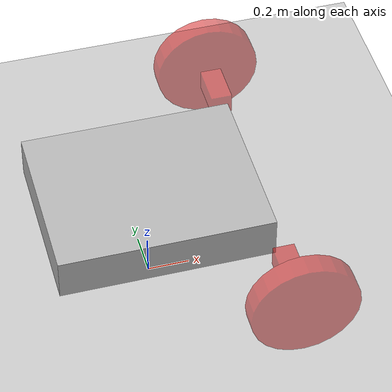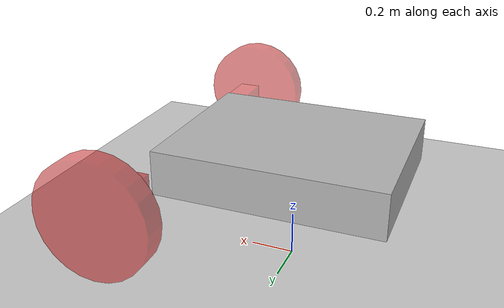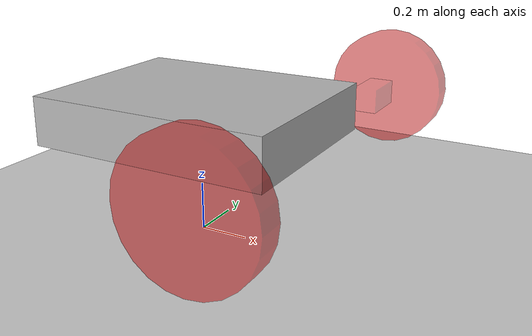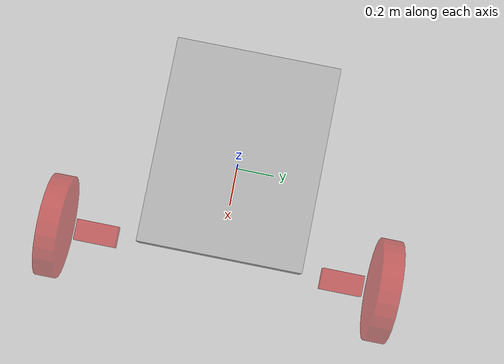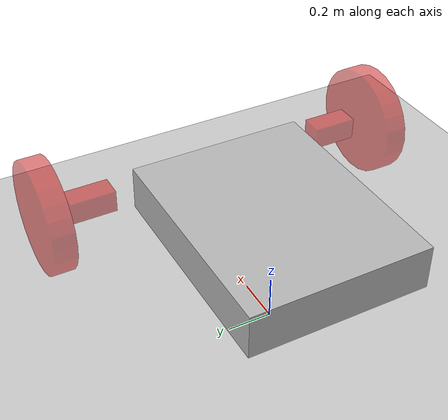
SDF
<?xml version="1.0" ?>
<sdf version="1.6">
  <world name="default">
    <light type="directional" name="sun">
      <cast_shadows>true</cast_shadows>
      <pose>0 0 10 0 0 0</pose>
      <diffuse>1 1 1 1</diffuse>
      <specular>0.5 0.5 0.5 1</specular>
      <attenuation>
        <range>1000</range>
        <constant>0.9</constant>
        <linear>0.01</linear>
        <quadratic>0.001</quadratic>
      </attenuation>
      <direction>-0.5 0.1 -0.9</direction>
    </light>
    <gravity>0 0 -9.8</gravity>

    <model name="ground_plane">
        <static>true</static>
        <link name="link">
            <collision name="collision">
            <geometry>
                <plane>
                <normal>0 0 1</normal>
                </plane>
            </geometry>
            </collision>
            <visual name="visual">
            <geometry>
                <plane>
                <normal>0 0 1</normal>
                <size>100 100</size>
                </plane>
            </geometry>
            <material>
                <ambient>0.8 0.8 0.8 1</ambient>
                <diffuse>0.8 0.8 0.8 1</diffuse>
                <specular>0.8 0.8 0.8 1</specular>
            </material>
            </visual>
        </link>
    </model>

    <model name="joint_controller_demo">
      <static>false</static>
      <pose>0 0 0.5 0 0 0</pose>

      <link name="base_link">
        <pose>0.0 0.0 0.0 0 0 0</pose>
        <inertial>
          <inertia>
            <ixx>2.501</ixx>
            <ixy>0</ixy>
            <ixz>0</ixz>
            <iyy>2.501</iyy>
            <iyz>0</iyz>
            <izz>5</izz>
          </inertia>
          <mass>1.0</mass>
        </inertial>
        <visual name="base_visual">
          <pose>0.0 0.0 0.0 0 0 0</pose>
          <geometry>
            <box>
              <size>1.0 0.8 0.2</size>
            </box>
          </geometry>

        </visual>
        <collision name="base_collision">
          <pose>0.0 0.0 0.0 0 0 0</pose>
          <geometry>
            <box>
              <size>1.0 0.8 0.2</size>
            </box>
          </geometry>
        </collision>
      </link>

      <link name="left_arm">
        <pose>0.5 0.6 0.0 1.5707963 0 0</pose>
        <inertial>
          <inertia>
            <ixx>2.501</ixx>
            <ixy>0</ixy>
            <ixz>0</ixz>
            <iyy>2.501</iyy>
            <iyz>0</iyz>
            <izz>5</izz>
          </inertia>
          <mass>0.5</mass>
        </inertial>
        <visual name="visual">
          <geometry>
            <box>
              <size>0.1 0.1 0.2</size>
            </box>
          </geometry>
          <material>
            <ambient>0.2 0.8 0.2 1</ambient>
            <diffuse>0.8 0 0 1</diffuse>
          </material>
          <transparency>0.5</transparency>
        </visual>
        <collision name="collision">
          <geometry>
            <box>
              <size>0.1 0.1 0.2</size>
            </box>
          </geometry>
        </collision>
      </link>

      <link name="left_wheel">
        <pose>0.5 0.8 0.0 1.5707963 0 0</pose>
        <inertial>
          <inertia>
            <ixx>0.032</ixx>
            <ixy>0</ixy>
            <ixz>0</ixz>
            <iyy>0.032</iyy>
            <iyz>0</iyz>
            <izz>0.00012</izz>
          </inertia>
          <mass>0.5</mass>
        </inertial>
        <visual name="visual">
          <geometry>
            <cylinder>
              <radius>0.25</radius>
              <length>0.1</length>
            </cylinder>
          </geometry>
          <material>
            <ambient>0.2 0.8 0.2 1</ambient>
            <diffuse>0.8 0 0 1</diffuse>
          </material>
          <transparency>0.5</transparency>
        </visual>
        <collision name="collision">
          <geometry>
            <cylinder>
              <radius>0.25</radius>
              <length>0.1</length>
            </cylinder>
          </geometry>
        </collision>
      </link>

      <link name="right_arm">
        <pose>0.5 -0.6 0.0 1.5707963 0 0</pose>
        <inertial>
          <inertia>
            <ixx>2.501</ixx>
            <ixy>0</ixy>
            <ixz>0</ixz>
            <iyy>2.501</iyy>
            <iyz>0</iyz>
            <izz>5</izz>
          </inertia>
          <mass>0.5</mass>
        </inertial>
        <visual name="visual">
          <geometry>
            <box>
              <size>0.1 0.1 0.2</size>
            </box>
          </geometry>
          <material>
            <ambient>0.2 0.8 0.2 1</ambient>
            <diffuse>0.8 0 0 1</diffuse>
          </material>
          <transparency>0.5</transparency>
        </visual>
        <collision name="collision">
          <geometry>
            <box>
              <size>0.1 0.1 0.2</size>
            </box>
          </geometry>
        </collision>
      </link>

      <link name="right_wheel">
        <pose>0.5 -0.8 0.0 1.5707963 0 0</pose>
        <inertial>
          <inertia>
            <ixx>0.032</ixx>
            <ixy>0</ixy>
            <ixz>0</ixz>
            <iyy>0.032</iyy>
            <iyz>0</iyz>
            <izz>0.00012</izz>
          </inertia>
          <mass>0.5</mass>
        </inertial>
        <visual name="visual">
          <geometry>
            <cylinder>
              <radius>0.25</radius>
              <length>0.1</length>
            </cylinder>
          </geometry>
          <material>
            <ambient>0.2 0.8 0.2 1</ambient>
            <diffuse>0.8 0 0 1</diffuse>
          </material>
          <transparency>0.5</transparency>
        </visual>
        <collision name="collision">
          <geometry>
            <cylinder>
              <radius>0.25</radius>
              <length>0.1</length>
            </cylinder>
          </geometry>
        </collision>
      </link>

      <joint name="left_arm_joint" type="revolute">
        <pose>0 0 0.1 0 0 0</pose>
        <parent>base_link</parent>
        <child>left_arm</child>
        <axis>
          <xyz>0 1 0</xyz>
        </axis>
        <!-- 여기는 arm이므로 리미트 걸어줘야 함. 확인할 것. 그리고 플러그인도 포지션 모드로 해줘야 함.  -->
      </joint>
      <joint name="left_wheel_joint" type="revolute">
        <pose>0 0 -0.1 0 0 0</pose>
        <parent>left_arm</parent>
        <child>left_wheel</child>
        <axis>
          <xyz>0 0 -1</xyz>
        </axis>
      </joint>

      <joint name="right_arm_joint" type="revolute">
        <pose>0 0 -0.1 0 0 0</pose>
        <parent>base_link</parent>
        <child>right_arm</child>
        <axis>
          <xyz>0 1 0</xyz>
        </axis>
        <!-- 여기는 arm이므로 리미트 걸어줘야 함. 확인할 것. 그리고 플러그인도 포지션 모드로 해줘야 함.  -->
      </joint>
      <joint name="right_wheel_joint" type="revolute">
        <pose>0 0 0 0 0 0</pose>
        <parent>right_arm</parent>
        <child>right_wheel</child>
        <axis>
          <xyz>0 0 -1</xyz>
        </axis>
      </joint>

      <plugin
        filename="gz-sim-joint-controller-system"
        name="gz::sim::systems::JointController">
        <joint_name>left_wheel_joint</joint_name>
        <initial_velocity>0.0</initial_velocity>
        <topic>left_wheel_vel</topic>
      </plugin>

      <plugin
        filename="gz-sim-joint-controller-system"
        name="gz::sim::systems::JointController">
        <joint_name>right_wheel_joint</joint_name>
        <initial_velocity>0.0</initial_velocity>
        <topic>right_wheel_vel</topic>
      </plugin>

      <!-- 아래는 팔 관련 플러그인 -->
      <plugin
        filename="gz-sim-joint-position-controller-system"
        name="gz::sim::systems::JointPositionController">
        <joint_name>right_arm_joint</joint_name>
        <topic>right_arm_angle</topic>
        <p_gain>10</p_gain>
        <i_gain>0.1</i_gain>
        <d_gain>0.1</d_gain>
        <i_max>1</i_max>
        <i_min>-1</i_min>
        <cmd_max>1000</cmd_max>
        <cmd_min>-1000</cmd_min>
      </plugin>

      <plugin
        filename="gz-sim-joint-position-controller-system"
        name="gz::sim::systems::JointPositionController">
        <joint_name>left_arm_joint</joint_name>
        <topic>left_arm_angle</topic>
        <p_gain>10</p_gain>
        <i_gain>0.1</i_gain>
        <d_gain>0.1</d_gain>
        <i_max>1</i_max>
        <i_min>-1</i_min>
        <cmd_max>1000</cmd_max>
        <cmd_min>-1000</cmd_min>
      </plugin>

      <!-- 여기에 joint state 발행하는거 넣어야 함.  -->

    </model>
  </world>
</sdf>
